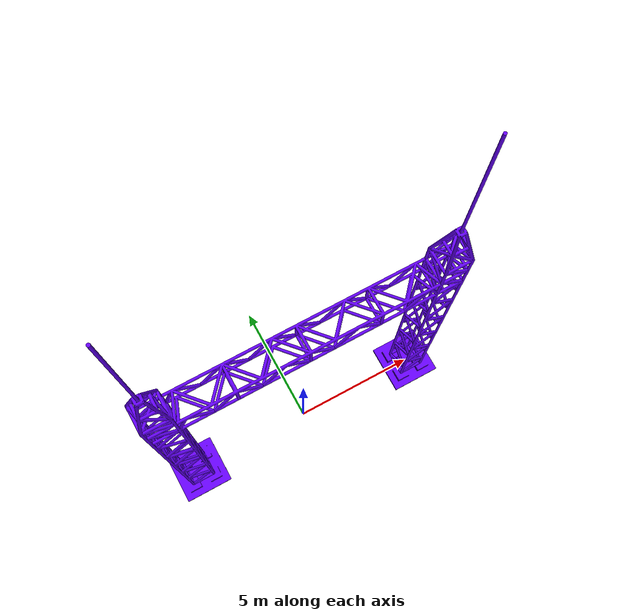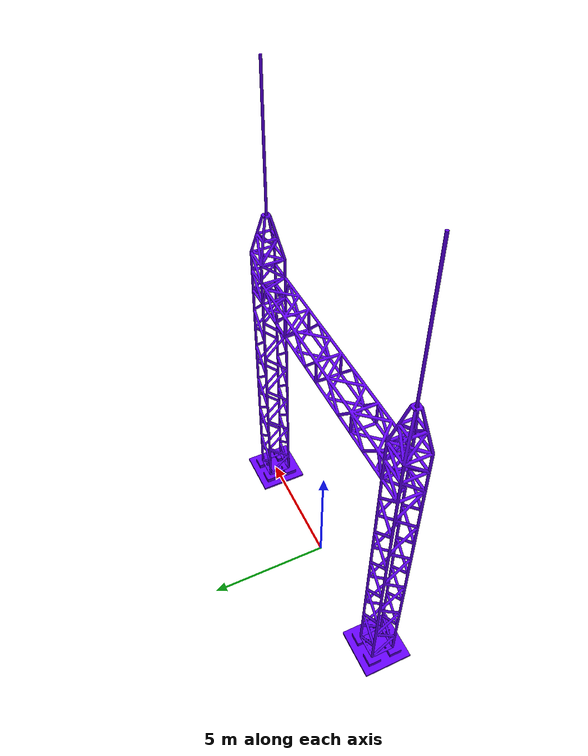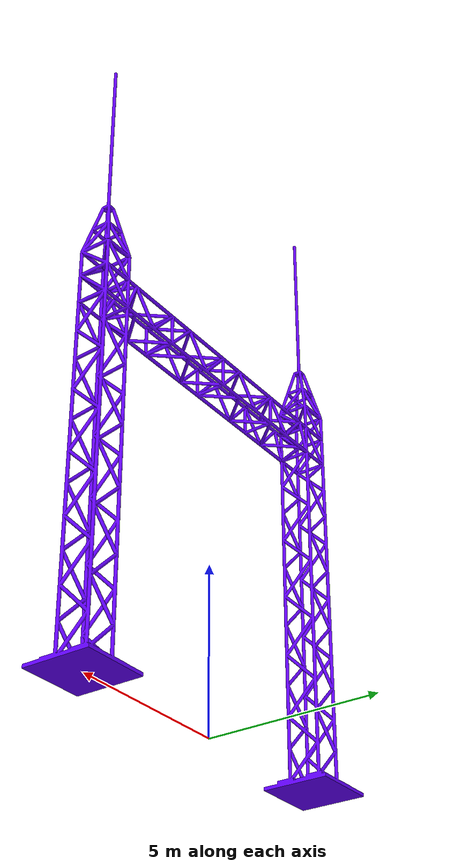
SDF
<?xml version="1.0" ?>
<sdf version="1.8">
  <model name="Electrical_Array_8">
    <static>true</static>
    <link name="link">
      <collision name="collision">
        <geometry>
          <mesh>
            <uri>model://Electrical_Array_8/Meshes/Electrical_Array_8.stl</uri>
            <scale>0.001 0.001 0.001</scale>
          </mesh>
        </geometry>
      </collision>

      <visual name="visual">
        <geometry>
          <mesh>
            <uri>model://Electrical_Array_8/Meshes/Electrical_Array_8.stl</uri>
            <scale>0.001 0.001 0.001</scale>
          </mesh>
        </geometry>
        <material>
          <diffuse>0.39 0.0 1.0 1.0</diffuse>
        </material>
      </visual>
    </link>
  </model>
</sdf>
